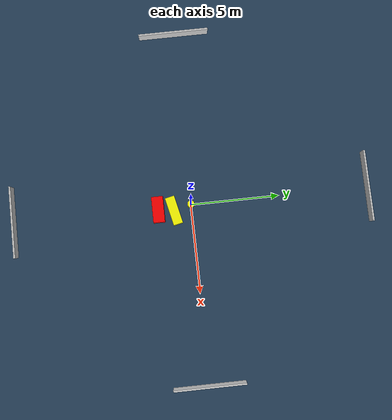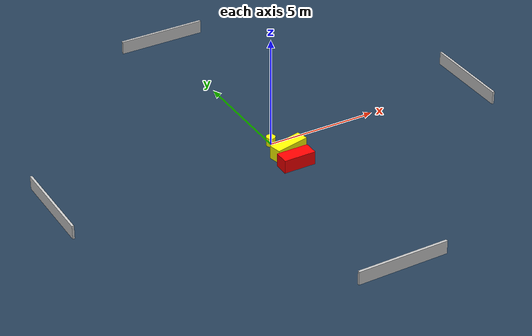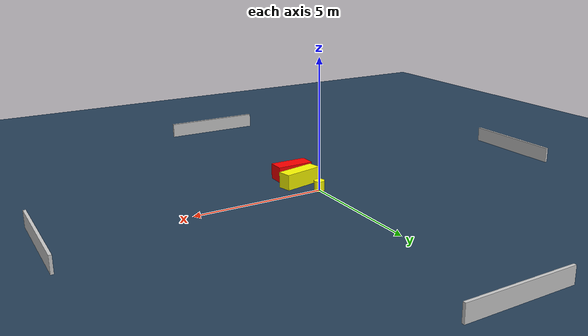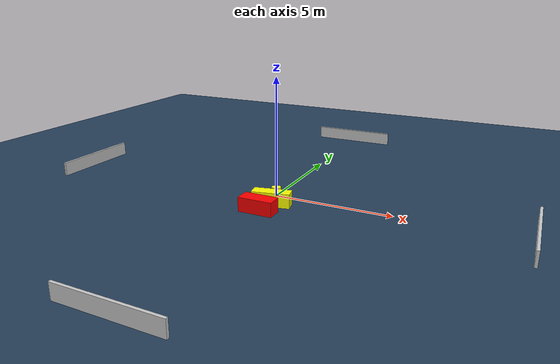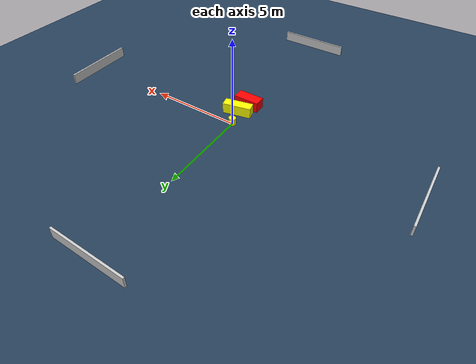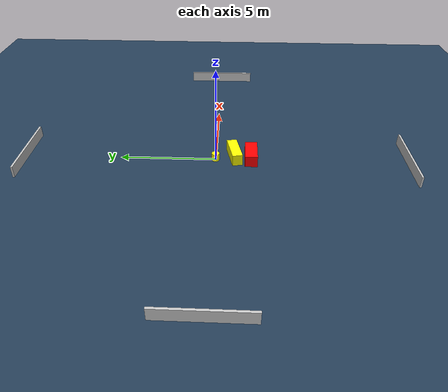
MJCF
<?xml version="1.0" ?>
<mujoco model="generated_environment">
  <option timestep="0.01" integrator="RK4" cone="elliptic"/>
  <default>
    <geom density="1"/>
  </default>
  <asset>
    <texture builtin="gradient" height="3072" name="skybox" rgb1="0.3 0.5 0.7" rgb2="0 0 0" type="skybox" width="512"/>
    <texture builtin="checker" height="300" name="groundplane" rgb1="0.2 0.3 0.4" rgb2="0.1 0.2 0.3" type="2d" width="300"/>
    <material name="groundplane" reflectance="0.2" texrepeat="5 5" texture="groundplane"/>
  </asset>
  <worldbody>
    <light dir="0 0 -1" directional="true" pos="0 0 1.5"/>
    <geom condim="3" friction="0.5 0.005 0.001" material="groundplane" name="floor" pos="0 0 0" size="0 0 0.05" type="plane"/>
    <body name="walls">
      <geom name="wall_1" condim="4" pos="-10.0 0.0 0.3" rgba="0.800000011920929 0.800000011920929 0.800000011920929 1.0" size="0.05 2.0 0.3" type="box"/>
      <geom name="wall_2" condim="4" pos="10.0 0.0 0.3" rgba="0.800000011920929 0.800000011920929 0.800000011920929 1.0" size="0.05 2.0 0.3" type="box"/>
      <geom name="wall_3" condim="4" pos="0.0 -10.0 0.3" rgba="0.800000011920929 0.800000011920929 0.800000011920929 1.0" size="2.0 0.05 0.3" type="box"/>
      <geom name="wall_4" condim="4" pos="0.0 10.0 0.3" rgba="0.800000011920929 0.800000011920929 0.800000011920929 1.0" size="2.0 0.05 0.3" type="box"/>
    </body>
    <body name="robot">
      <joint name="joint_x" type="slide" pos="0 0 0" axis="1 0 0"/>
      <joint name="joint_y" type="slide" pos="0 0 0" axis="0 1 0"/>
      <geom name="robot" type="cylinder" pos="0.0 0.0 0.2" size="0.2 0.2 0.0" mass="5.0" friction="1.0 0.005 0.0001" condim="4" rgba="1.0 1.0 0.0 1.0"/>
    </body>
    <body name="obstacle_1_movable">
      <geom name="obstacle_1_movable" condim="4" pos="0.27931082571683213 -0.9863328335591725 0.3" euler="0 0 12.301880963856755" friction="0.0 0.005 0.001" rgba="1.0 1.0 0.0 1.0" size="0.7848865883693825 0.26750509838957803 0.3" type="box" mass="0.1"/>
      <joint type="free"/>
    </body>
    <body name="obstacle_2_static">
      <geom name="obstacle_2_static" condim="4" pos="0.1293971035140517 -1.8582615365444277 0.3" euler="0 0 89.89503300465931" friction="0.0 0.005 0.001" rgba="1.0 0.0 0.0 1.0" size="0.3224719172755991 0.7209085822707024 0.3" type="box"/>
    </body>
  </worldbody>
  <actuator>
    <motor name="actuator_x" joint="joint_x" gear="1" ctrlrange="-1 1"/>
    <motor name="actuator_y" joint="joint_y" gear="1" ctrlrange="-1 1"/>
  </actuator>
</mujoco>
